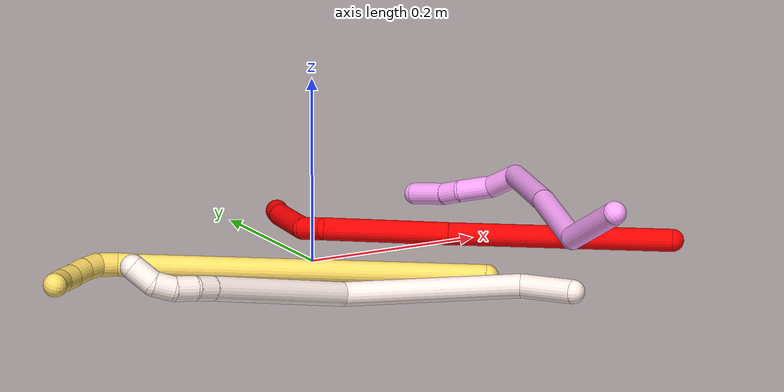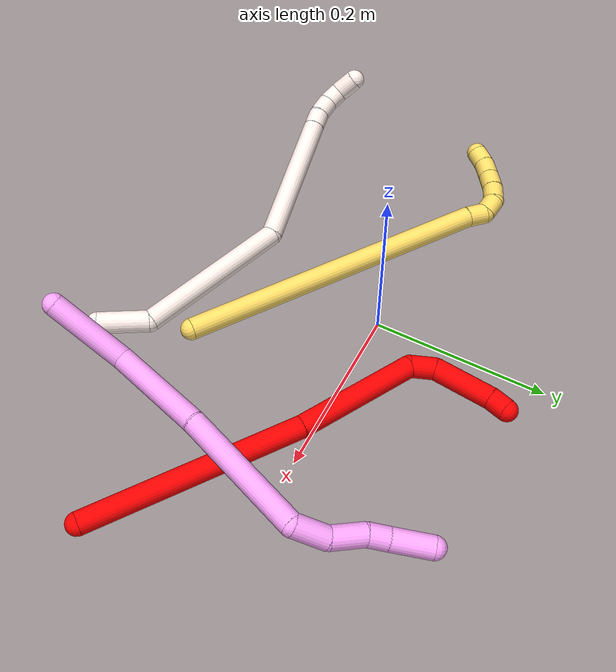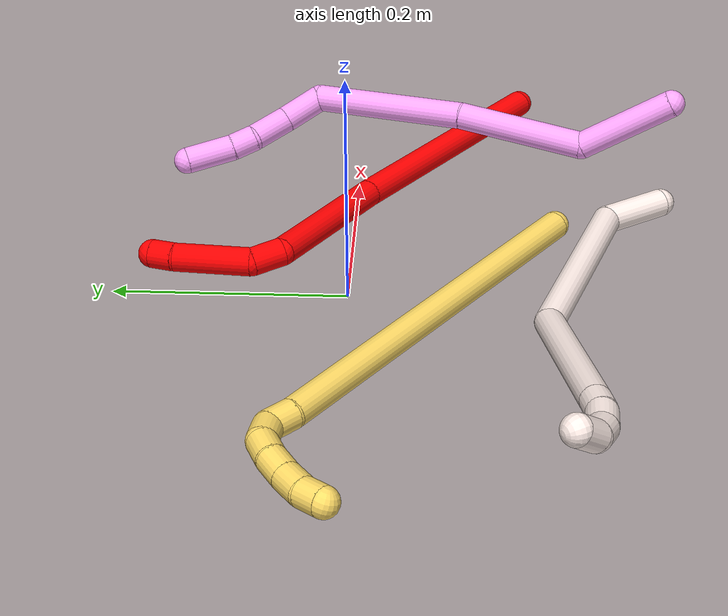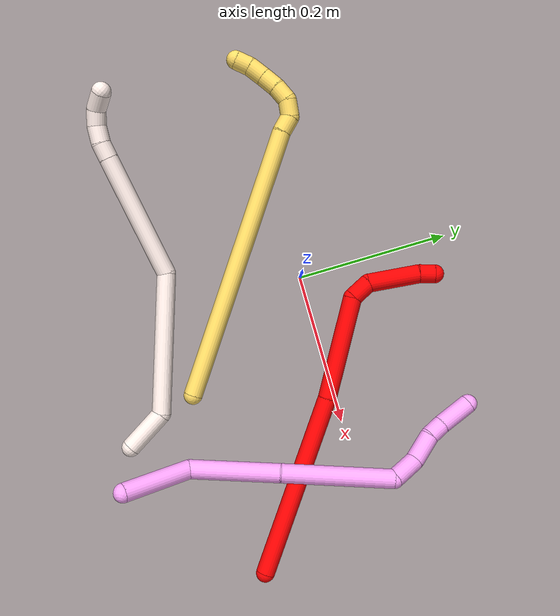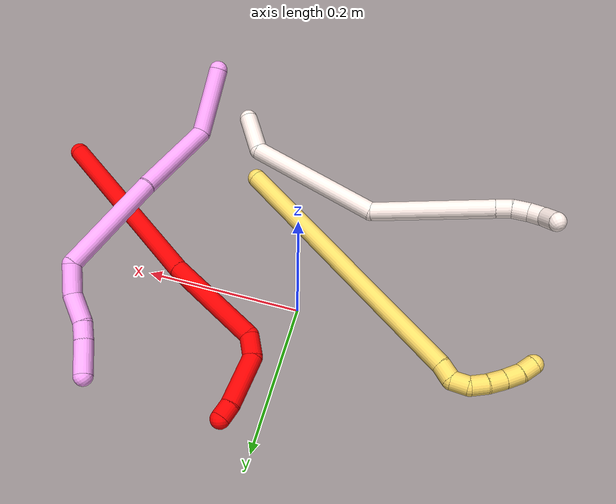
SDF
<sdf version="1.7">
 <world name="default">
  <model name="2">
   <static>0</static>
   <link name="2">
    <collision name="collision-cylinder-e_1_1_4">
     <pose>-0.086972 0.040466 -0.076213 -2.65348 -0.789337 2.06392</pose>
     <geometry><cylinder><radius>0.0125</radius><length>0.24503</length></cylinder></geometry>
     <surface>
      <friction><ode><mu>1.16</mu><mu2>1.16</mu2><slip1>0</slip1><slip2>0</slip2></ode></friction>
      <contact><ode><kp>1e+06</kp><kd>1</kd><max_vel>0</max_vel><min_depth>0.001</min_depth></ode></contact>
     </surface>
    </collision>
    <visual name="visual-cylinder-e_1_1_4">
     <pose>-0.086972 0.040466 -0.076213 -2.65348 -0.789337 2.06392</pose>
     <geometry><cylinder><radius>0.0125</radius><length>0.24503</length></cylinder></geometry>
     <material><ambient>1 0 0 1</ambient></material>
    </visual>
    <collision name="collision-cylinder-e_2_4_5">
     <pose>-0.227381 0.100916 -0.190666 -2.66005 -0.891535 2.19227</pose>
     <geometry><cylinder><radius>0.0125</radius><length>0.137364</length></cylinder></geometry>
     <surface>
      <friction><ode><mu>1.16</mu><mu2>1.16</mu2><slip1>0</slip1><slip2>0</slip2></ode></friction>
      <contact><ode><kp>1e+06</kp><kd>1</kd><max_vel>0</max_vel><min_depth>0.001</min_depth></ode></contact>
     </surface>
    </collision>
    <visual name="visual-cylinder-e_2_4_5">
     <pose>-0.227381 0.100916 -0.190666 -2.66005 -0.891535 2.19227</pose>
     <geometry><cylinder><radius>0.0125</radius><length>0.137364</length></cylinder></geometry>
     <material><ambient>1 0 0 1</ambient></material>
    </visual>
    <collision name="collision-cylinder-e_3_5_6">
     <pose>-0.284825 0.12803 -0.240669 -2.59665 -0.283482 0.944322</pose>
     <geometry><cylinder><radius>0.0125</radius><length>0.028653</length></cylinder></geometry>
     <surface>
      <friction><ode><mu>1.16</mu><mu2>1.16</mu2><slip1>0</slip1><slip2>0</slip2></ode></friction>
      <contact><ode><kp>1e+06</kp><kd>1</kd><max_vel>0</max_vel><min_depth>0.001</min_depth></ode></contact>
     </surface>
    </collision>
    <visual name="visual-cylinder-e_3_5_6">
     <pose>-0.284825 0.12803 -0.240669 -2.59665 -0.283482 0.944322</pose>
     <geometry><cylinder><radius>0.0125</radius><length>0.028653</length></cylinder></geometry>
     <material><ambient>1 0 0 1</ambient></material>
    </visual>
    <collision name="collision-cylinder-e_4_6_7">
     <pose>-0.281585 0.159425 -0.27521 -2.3246 0.214396 -0.487345</pose>
     <geometry><cylinder><radius>0.0125</radius><length>0.068124</length></cylinder></geometry>
     <surface>
      <friction><ode><mu>1.16</mu><mu2>1.16</mu2><slip1>0</slip1><slip2>0</slip2></ode></friction>
      <contact><ode><kp>1e+06</kp><kd>1</kd><max_vel>0</max_vel><min_depth>0.001</min_depth></ode></contact>
     </surface>
    </collision>
    <visual name="visual-cylinder-e_4_6_7">
     <pose>-0.281585 0.159425 -0.27521 -2.3246 0.214396 -0.487345</pose>
     <geometry><cylinder><radius>0.0125</radius><length>0.068124</length></cylinder></geometry>
     <material><ambient>1 0 0 1</ambient></material>
    </visual>
    <collision name="collision-cylinder-e_5_7_2">
     <pose>-0.270321 0.191007 -0.304217 -2.27602 0.395975 -0.819334</pose>
     <geometry><cylinder><radius>0.0125</radius><length>0.020829</length></cylinder></geometry>
     <surface>
      <friction><ode><mu>1.16</mu><mu2>1.16</mu2><slip1>0</slip1><slip2>0</slip2></ode></friction>
      <contact><ode><kp>1e+06</kp><kd>1</kd><max_vel>0</max_vel><min_depth>0.001</min_depth></ode></contact>
     </surface>
    </collision>
    <visual name="visual-cylinder-e_5_7_2">
     <pose>-0.270321 0.191007 -0.304217 -2.27602 0.395975 -0.819334</pose>
     <geometry><cylinder><radius>0.0125</radius><length>0.020829</length></cylinder></geometry>
     <material><ambient>1 0 0 1</ambient></material>
    </visual>
    <collision name="collision-sphere-2">
     <pose>-0.266304 0.198324 -0.310445 0 -0 0</pose>
     <geometry><sphere><radius>0.0125</radius></sphere></geometry>
     <surface>
      <friction><ode><mu>1.16</mu><mu2>1.16</mu2><slip1>0</slip1><slip2>0</slip2></ode></friction>
      <contact><ode><kp>1e+06</kp><kd>1</kd><max_vel>0</max_vel><min_depth>0.001</min_depth></ode></contact>
     </surface>
    </collision>
    <visual name="visual-sphere-2">
     <pose>-0.266304 0.198324 -0.310445 0 -0 0</pose>
     <geometry><sphere><radius>0.0125</radius></sphere></geometry>
     <material><ambient>1 0 0 1</ambient></material>
    </visual>
    <collision name="collision-sphere-7">
     <pose>-0.274338 0.183691 -0.297989 0 -0 0</pose>
     <geometry><sphere><radius>0.0125</radius></sphere></geometry>
     <surface>
      <friction><ode><mu>1.16</mu><mu2>1.16</mu2><slip1>0</slip1><slip2>0</slip2></ode></friction>
      <contact><ode><kp>1e+06</kp><kd>1</kd><max_vel>0</max_vel><min_depth>0.001</min_depth></ode></contact>
     </surface>
    </collision>
    <visual name="visual-sphere-7">
     <pose>-0.274338 0.183691 -0.297989 0 -0 0</pose>
     <geometry><sphere><radius>0.0125</radius></sphere></geometry>
     <material><ambient>1 0 0 1</ambient></material>
    </visual>
    <collision name="collision-sphere-6">
     <pose>-0.288832 0.135159 -0.252431 0 -0 0</pose>
     <geometry><sphere><radius>0.0125</radius></sphere></geometry>
     <surface>
      <friction><ode><mu>1.16</mu><mu2>1.16</mu2><slip1>0</slip1><slip2>0</slip2></ode></friction>
      <contact><ode><kp>1e+06</kp><kd>1</kd><max_vel>0</max_vel><min_depth>0.001</min_depth></ode></contact>
     </surface>
    </collision>
    <visual name="visual-sphere-6">
     <pose>-0.288832 0.135159 -0.252431 0 -0 0</pose>
     <geometry><sphere><radius>0.0125</radius></sphere></geometry>
     <material><ambient>1 0 0 1</ambient></material>
    </visual>
    <collision name="collision-sphere-5">
     <pose>-0.280818 0.1209 -0.228907 0 -0 0</pose>
     <geometry><sphere><radius>0.0125</radius></sphere></geometry>
     <surface>
      <friction><ode><mu>1.16</mu><mu2>1.16</mu2><slip1>0</slip1><slip2>0</slip2></ode></friction>
      <contact><ode><kp>1e+06</kp><kd>1</kd><max_vel>0</max_vel><min_depth>0.001</min_depth></ode></contact>
     </surface>
    </collision>
    <visual name="visual-sphere-5">
     <pose>-0.280818 0.1209 -0.228907 0 -0 0</pose>
     <geometry><sphere><radius>0.0125</radius></sphere></geometry>
     <material><ambient>1 0 0 1</ambient></material>
    </visual>
    <collision name="collision-sphere-1">
     <geometry><sphere><radius>0.0125</radius></sphere></geometry>
     <surface>
      <friction><ode><mu>1.16</mu><mu2>1.16</mu2><slip1>0</slip1><slip2>0</slip2></ode></friction>
      <contact><ode><kp>1e+06</kp><kd>1</kd><max_vel>0</max_vel><min_depth>0.001</min_depth></ode></contact>
     </surface>
    </collision>
    <visual name="visual-sphere-1">
     <geometry><sphere><radius>0.0125</radius></sphere></geometry>
     <material><ambient>1 0 0 1</ambient></material>
    </visual>
    <collision name="collision-sphere-4">
     <pose>-0.173943 0.080932 -0.152425 0 -0 0</pose>
     <geometry><sphere><radius>0.0125</radius></sphere></geometry>
     <surface>
      <friction><ode><mu>1.16</mu><mu2>1.16</mu2><slip1>0</slip1><slip2>0</slip2></ode></friction>
      <contact><ode><kp>1e+06</kp><kd>1</kd><max_vel>0</max_vel><min_depth>0.001</min_depth></ode></contact>
     </surface>
    </collision>
    <visual name="visual-sphere-4">
     <pose>-0.173943 0.080932 -0.152425 0 -0 0</pose>
     <geometry><sphere><radius>0.0125</radius></sphere></geometry>
     <material><ambient>1 0 0 1</ambient></material>
    </visual>
    <inertial>
     <pose>-0.171038 0.08457 -0.153692 0 -0 0</pose>
     <mass>0.5</mass>
     <inertia>
      <ixx>0.000382</ixx>
      <ixy>0</ixy>
      <ixz>0</ixz>
      <iyy>0.001924</iyy>
      <iyz>0</iyz>
      <izz>0.000523</izz>
     </inertia>
    </inertial>
   </link>
   <pose>0.362669 -0.153246 0.011499 0.803013 0.267299 0.119262</pose>
  </model>
  <model name="4">
   <static>0</static>
   <link name="4">
    <collision name="collision-cylinder-e_1_1_4">
     <pose>0.016731 0.029963 -0.029834 -2.35405 0.376783 -0.860432</pose>
     <geometry><cylinder><radius>0.0125</radius><length>0.090945</length></cylinder></geometry>
     <surface>
      <friction><ode><mu>1.16</mu><mu2>1.16</mu2><slip1>0</slip1><slip2>0</slip2></ode></friction>
      <contact><ode><kp>1e+06</kp><kd>1</kd><max_vel>0</max_vel><min_depth>0.001</min_depth></ode></contact>
     </surface>
    </collision>
    <visual name="visual-cylinder-e_1_1_4">
     <pose>0.016731 0.029963 -0.029834 -2.35405 0.376783 -0.860432</pose>
     <geometry><cylinder><radius>0.0125</radius><length>0.090945</length></cylinder></geometry>
     <material><ambient>1 0.65098 0.996078 1</ambient></material>
    </visual>
    <collision name="collision-cylinder-e_2_4_5">
     <pose>0.041978 0.117792 -0.067216 -1.70049 0.144914 -0.164955</pose>
     <geometry><cylinder><radius>0.0125</radius><length>0.117951</length></cylinder></geometry>
     <surface>
      <friction><ode><mu>1.16</mu><mu2>1.16</mu2><slip1>0</slip1><slip2>0</slip2></ode></friction>
      <contact><ode><kp>1e+06</kp><kd>1</kd><max_vel>0</max_vel><min_depth>0.001</min_depth></ode></contact>
     </surface>
    </collision>
    <visual name="visual-cylinder-e_2_4_5">
     <pose>0.041978 0.117792 -0.067216 -1.70049 0.144914 -0.164955</pose>
     <geometry><cylinder><radius>0.0125</radius><length>0.117951</length></cylinder></geometry>
     <material><ambient>1 0.65098 0.996078 1</ambient></material>
    </visual>
    <collision name="collision-cylinder-e_3_5_6">
     <pose>0.069928 0.244229 -0.088705 -1.7714 0.270899 -0.330525</pose>
     <geometry><cylinder><radius>0.0125</radius><length>0.14524</length></cylinder></geometry>
     <surface>
      <friction><ode><mu>1.16</mu><mu2>1.16</mu2><slip1>0</slip1><slip2>0</slip2></ode></friction>
      <contact><ode><kp>1e+06</kp><kd>1</kd><max_vel>0</max_vel><min_depth>0.001</min_depth></ode></contact>
     </surface>
    </collision>
    <visual name="visual-cylinder-e_3_5_6">
     <pose>0.069928 0.244229 -0.088705 -1.7714 0.270899 -0.330525</pose>
     <geometry><cylinder><radius>0.0125</radius><length>0.14524</length></cylinder></geometry>
     <material><ambient>1 0.65098 0.996078 1</ambient></material>
    </visual>
    <collision name="collision-cylinder-e_4_6_7">
     <pose>0.092234 0.32343 -0.118816 -2.55987 0.14741 -0.483674</pose>
     <geometry><cylinder><radius>0.0125</radius><length>0.039127</length></cylinder></geometry>
     <surface>
      <friction><ode><mu>1.16</mu><mu2>1.16</mu2><slip1>0</slip1><slip2>0</slip2></ode></friction>
      <contact><ode><kp>1e+06</kp><kd>1</kd><max_vel>0</max_vel><min_depth>0.001</min_depth></ode></contact>
     </surface>
    </collision>
    <visual name="visual-cylinder-e_4_6_7">
     <pose>0.092234 0.32343 -0.118816 -2.55987 0.14741 -0.483674</pose>
     <geometry><cylinder><radius>0.0125</radius><length>0.039127</length></cylinder></geometry>
     <material><ambient>1 0.65098 0.996078 1</ambient></material>
    </visual>
    <collision name="collision-cylinder-e_5_7_8">
     <pose>0.09007 0.342444 -0.151599 -2.67441 -0.264346 1.01909</pose>
     <geometry><cylinder><radius>0.0125</radius><length>0.038558</length></cylinder></geometry>
     <surface>
      <friction><ode><mu>1.16</mu><mu2>1.16</mu2><slip1>0</slip1><slip2>0</slip2></ode></friction>
      <contact><ode><kp>1e+06</kp><kd>1</kd><max_vel>0</max_vel><min_depth>0.001</min_depth></ode></contact>
     </surface>
    </collision>
    <visual name="visual-cylinder-e_5_7_8">
     <pose>0.09007 0.342444 -0.151599 -2.67441 -0.264346 1.01909</pose>
     <geometry><cylinder><radius>0.0125</radius><length>0.038558</length></cylinder></geometry>
     <material><ambient>1 0.65098 0.996078 1</ambient></material>
    </visual>
    <collision name="collision-cylinder-e_6_8_9">
     <pose>0.084448 0.357917 -0.177375 -2.48284 -0.050456 0.147369</pose>
     <geometry><cylinder><radius>0.0125</radius><length>0.023199</length></cylinder></geometry>
     <surface>
      <friction><ode><mu>1.16</mu><mu2>1.16</mu2><slip1>0</slip1><slip2>0</slip2></ode></friction>
      <contact><ode><kp>1e+06</kp><kd>1</kd><max_vel>0</max_vel><min_depth>0.001</min_depth></ode></contact>
     </surface>
    </collision>
    <visual name="visual-cylinder-e_6_8_9">
     <pose>0.084448 0.357917 -0.177375 -2.48284 -0.050456 0.147369</pose>
     <geometry><cylinder><radius>0.0125</radius><length>0.023199</length></cylinder></geometry>
     <material><ambient>1 0.65098 0.996078 1</ambient></material>
    </visual>
    <collision name="collision-cylinder-e_7_9_2">
     <pose>0.081243 0.380749 -0.202383 -2.35955 -0.116754 0.281656</pose>
     <geometry><cylinder><radius>0.0125</radius><length>0.044979</length></cylinder></geometry>
     <surface>
      <friction><ode><mu>1.16</mu><mu2>1.16</mu2><slip1>0</slip1><slip2>0</slip2></ode></friction>
      <contact><ode><kp>1e+06</kp><kd>1</kd><max_vel>0</max_vel><min_depth>0.001</min_depth></ode></contact>
     </surface>
    </collision>
    <visual name="visual-cylinder-e_7_9_2">
     <pose>0.081243 0.380749 -0.202383 -2.35955 -0.116754 0.281656</pose>
     <geometry><cylinder><radius>0.0125</radius><length>0.044979</length></cylinder></geometry>
     <material><ambient>1 0.65098 0.996078 1</ambient></material>
    </visual>
    <collision name="collision-sphere-2">
     <pose>0.078623 0.39649 -0.21823 0 -0 0</pose>
     <geometry><sphere><radius>0.0125</radius></sphere></geometry>
     <surface>
      <friction><ode><mu>1.16</mu><mu2>1.16</mu2><slip1>0</slip1><slip2>0</slip2></ode></friction>
      <contact><ode><kp>1e+06</kp><kd>1</kd><max_vel>0</max_vel><min_depth>0.001</min_depth></ode></contact>
     </surface>
    </collision>
    <visual name="visual-sphere-2">
     <pose>0.078623 0.39649 -0.21823 0 -0 0</pose>
     <geometry><sphere><radius>0.0125</radius></sphere></geometry>
     <material><ambient>1 0.65098 0.996078 1</ambient></material>
    </visual>
    <collision name="collision-sphere-9">
     <pose>0.083863 0.365008 -0.186536 0 -0 0</pose>
     <geometry><sphere><radius>0.0125</radius></sphere></geometry>
     <surface>
      <friction><ode><mu>1.16</mu><mu2>1.16</mu2><slip1>0</slip1><slip2>0</slip2></ode></friction>
      <contact><ode><kp>1e+06</kp><kd>1</kd><max_vel>0</max_vel><min_depth>0.001</min_depth></ode></contact>
     </surface>
    </collision>
    <visual name="visual-sphere-9">
     <pose>0.083863 0.365008 -0.186536 0 -0 0</pose>
     <geometry><sphere><radius>0.0125</radius></sphere></geometry>
     <material><ambient>1 0.65098 0.996078 1</ambient></material>
    </visual>
    <collision name="collision-sphere-4">
     <pose>0.033462 0.059925 -0.059668 0 -0 0</pose>
     <geometry><sphere><radius>0.0125</radius></sphere></geometry>
     <surface>
      <friction><ode><mu>1.16</mu><mu2>1.16</mu2><slip1>0</slip1><slip2>0</slip2></ode></friction>
      <contact><ode><kp>1e+06</kp><kd>1</kd><max_vel>0</max_vel><min_depth>0.001</min_depth></ode></contact>
     </surface>
    </collision>
    <visual name="visual-sphere-4">
     <pose>0.033462 0.059925 -0.059668 0 -0 0</pose>
     <geometry><sphere><radius>0.0125</radius></sphere></geometry>
     <material><ambient>1 0.65098 0.996078 1</ambient></material>
    </visual>
    <collision name="collision-sphere-1">
     <geometry><sphere><radius>0.0125</radius></sphere></geometry>
     <surface>
      <friction><ode><mu>1.16</mu><mu2>1.16</mu2><slip1>0</slip1><slip2>0</slip2></ode></friction>
      <contact><ode><kp>1e+06</kp><kd>1</kd><max_vel>0</max_vel><min_depth>0.001</min_depth></ode></contact>
     </surface>
    </collision>
    <visual name="visual-sphere-1">
     <geometry><sphere><radius>0.0125</radius></sphere></geometry>
     <material><ambient>1 0.65098 0.996078 1</ambient></material>
    </visual>
    <collision name="collision-sphere-8">
     <pose>0.085033 0.350825 -0.168215 0 -0 0</pose>
     <geometry><sphere><radius>0.0125</radius></sphere></geometry>
     <surface>
      <friction><ode><mu>1.16</mu><mu2>1.16</mu2><slip1>0</slip1><slip2>0</slip2></ode></friction>
      <contact><ode><kp>1e+06</kp><kd>1</kd><max_vel>0</max_vel><min_depth>0.001</min_depth></ode></contact>
     </surface>
    </collision>
    <visual name="visual-sphere-8">
     <pose>0.085033 0.350825 -0.168215 0 -0 0</pose>
     <geometry><sphere><radius>0.0125</radius></sphere></geometry>
     <material><ambient>1 0.65098 0.996078 1</ambient></material>
    </visual>
    <collision name="collision-sphere-5">
     <pose>0.050495 0.17566 -0.074763 0 -0 0</pose>
     <geometry><sphere><radius>0.0125</radius></sphere></geometry>
     <surface>
      <friction><ode><mu>1.16</mu><mu2>1.16</mu2><slip1>0</slip1><slip2>0</slip2></ode></friction>
      <contact><ode><kp>1e+06</kp><kd>1</kd><max_vel>0</max_vel><min_depth>0.001</min_depth></ode></contact>
     </surface>
    </collision>
    <visual name="visual-sphere-5">
     <pose>0.050495 0.17566 -0.074763 0 -0 0</pose>
     <geometry><sphere><radius>0.0125</radius></sphere></geometry>
     <material><ambient>1 0.65098 0.996078 1</ambient></material>
    </visual>
    <collision name="collision-sphere-6">
     <pose>0.089361 0.312797 -0.102647 0 -0 0</pose>
     <geometry><sphere><radius>0.0125</radius></sphere></geometry>
     <surface>
      <friction><ode><mu>1.16</mu><mu2>1.16</mu2><slip1>0</slip1><slip2>0</slip2></ode></friction>
      <contact><ode><kp>1e+06</kp><kd>1</kd><max_vel>0</max_vel><min_depth>0.001</min_depth></ode></contact>
     </surface>
    </collision>
    <visual name="visual-sphere-6">
     <pose>0.089361 0.312797 -0.102647 0 -0 0</pose>
     <geometry><sphere><radius>0.0125</radius></sphere></geometry>
     <material><ambient>1 0.65098 0.996078 1</ambient></material>
    </visual>
    <collision name="collision-sphere-7">
     <pose>0.095107 0.334063 -0.134984 0 -0 0</pose>
     <geometry><sphere><radius>0.0125</radius></sphere></geometry>
     <surface>
      <friction><ode><mu>1.16</mu><mu2>1.16</mu2><slip1>0</slip1><slip2>0</slip2></ode></friction>
      <contact><ode><kp>1e+06</kp><kd>1</kd><max_vel>0</max_vel><min_depth>0.001</min_depth></ode></contact>
     </surface>
    </collision>
    <visual name="visual-sphere-7">
     <pose>0.095107 0.334063 -0.134984 0 -0 0</pose>
     <geometry><sphere><radius>0.0125</radius></sphere></geometry>
     <material><ambient>1 0.65098 0.996078 1</ambient></material>
    </visual>
    <inertial>
     <pose>0.058649 0.206757 -0.094474 0 -0 0</pose>
     <mass>0.5</mass>
     <inertia>
      <ixx>0.000296</ixx>
      <ixy>0</ixy>
      <ixz>0</ixz>
      <iyy>-0.000189</iyy>
      <iyz>0</iyz>
      <izz>-0.000573</izz>
     </inertia>
    </inertial>
   </link>
   <pose>0.196568 -0.285163 0.092227 0.42751 0.816974 0.005449</pose>
  </model>
  <model name="5">
   <static>0</static>
   <link name="5">
    <collision name="collision-cylinder-e_1_1_4">
     <pose>-0.145004 0.095573 -0.059556 -2.12806 -0.910486 1.44541</pose>
     <geometry><cylinder><radius>0.0125</radius><length>0.36719</length></cylinder></geometry>
     <surface>
      <friction><ode><mu>1.16</mu><mu2>1.16</mu2><slip1>0</slip1><slip2>0</slip2></ode></friction>
      <contact><ode><kp>1e+06</kp><kd>1</kd><max_vel>0</max_vel><min_depth>0.001</min_depth></ode></contact>
     </surface>
    </collision>
    <visual name="visual-cylinder-e_1_1_4">
     <pose>-0.145004 0.095573 -0.059556 -2.12806 -0.910486 1.44541</pose>
     <geometry><cylinder><radius>0.0125</radius><length>0.36719</length></cylinder></geometry>
     <material><ambient>1 0.858824 0.4 1</ambient></material>
    </visual>
    <collision name="collision-cylinder-e_2_4_5">
     <pose>-0.297612 0.198711 -0.123231 -2.06939 -0.723211 1.1338</pose>
     <geometry><cylinder><radius>0.0125</radius><length>0.02298</length></cylinder></geometry>
     <surface>
      <friction><ode><mu>1.16</mu><mu2>1.16</mu2><slip1>0</slip1><slip2>0</slip2></ode></friction>
      <contact><ode><kp>1e+06</kp><kd>1</kd><max_vel>0</max_vel><min_depth>0.001</min_depth></ode></contact>
     </surface>
    </collision>
    <visual name="visual-cylinder-e_2_4_5">
     <pose>-0.297612 0.198711 -0.123231 -2.06939 -0.723211 1.1338</pose>
     <geometry><cylinder><radius>0.0125</radius><length>0.02298</length></cylinder></geometry>
     <material><ambient>1 0.858824 0.4 1</ambient></material>
    </visual>
    <collision name="collision-cylinder-e_3_5_6">
     <pose>-0.316248 0.207452 -0.128943 -2.50551 -1.39329 2.39176</pose>
     <geometry><cylinder><radius>0.0125</radius><length>0.022417</length></cylinder></geometry>
     <surface>
      <friction><ode><mu>1.16</mu><mu2>1.16</mu2><slip1>0</slip1><slip2>0</slip2></ode></friction>
      <contact><ode><kp>1e+06</kp><kd>1</kd><max_vel>0</max_vel><min_depth>0.001</min_depth></ode></contact>
     </surface>
    </collision>
    <visual name="visual-cylinder-e_3_5_6">
     <pose>-0.316248 0.207452 -0.128943 -2.50551 -1.39329 2.39176</pose>
     <geometry><cylinder><radius>0.0125</radius><length>0.022417</length></cylinder></geometry>
     <material><ambient>1 0.858824 0.4 1</ambient></material>
    </visual>
    <collision name="collision-cylinder-e_4_6_7">
     <pose>-0.337167 0.203975 -0.13145 1.76512 -1.12358 -1.30657</pose>
     <geometry><cylinder><radius>0.0125</radius><length>0.021929</length></cylinder></geometry>
     <surface>
      <friction><ode><mu>1.16</mu><mu2>1.16</mu2><slip1>0</slip1><slip2>0</slip2></ode></friction>
      <contact><ode><kp>1e+06</kp><kd>1</kd><max_vel>0</max_vel><min_depth>0.001</min_depth></ode></contact>
     </surface>
    </collision>
    <visual name="visual-cylinder-e_4_6_7">
     <pose>-0.337167 0.203975 -0.13145 1.76512 -1.12358 -1.30657</pose>
     <geometry><cylinder><radius>0.0125</radius><length>0.021929</length></cylinder></geometry>
     <material><ambient>1 0.858824 0.4 1</ambient></material>
    </visual>
    <collision name="collision-cylinder-e_5_7_8">
     <pose>-0.356307 0.192773 -0.133139 1.68823 -0.951597 -1.05064</pose>
     <geometry><cylinder><radius>0.0125</radius><length>0.022728</length></cylinder></geometry>
     <surface>
      <friction><ode><mu>1.16</mu><mu2>1.16</mu2><slip1>0</slip1><slip2>0</slip2></ode></friction>
      <contact><ode><kp>1e+06</kp><kd>1</kd><max_vel>0</max_vel><min_depth>0.001</min_depth></ode></contact>
     </surface>
    </collision>
    <visual name="visual-cylinder-e_5_7_8">
     <pose>-0.356307 0.192773 -0.133139 1.68823 -0.951597 -1.05064</pose>
     <geometry><cylinder><radius>0.0125</radius><length>0.022728</length></cylinder></geometry>
     <material><ambient>1 0.858824 0.4 1</ambient></material>
    </visual>
    <collision name="collision-cylinder-e_6_8_9">
     <pose>-0.374603 0.179546 -0.133512 1.51108 -0.93386 -0.886685</pose>
     <geometry><cylinder><radius>0.0125</radius><length>0.022494</length></cylinder></geometry>
     <surface>
      <friction><ode><mu>1.16</mu><mu2>1.16</mu2><slip1>0</slip1><slip2>0</slip2></ode></friction>
      <contact><ode><kp>1e+06</kp><kd>1</kd><max_vel>0</max_vel><min_depth>0.001</min_depth></ode></contact>
     </surface>
    </collision>
    <visual name="visual-cylinder-e_6_8_9">
     <pose>-0.374603 0.179546 -0.133512 1.51108 -0.93386 -0.886685</pose>
     <geometry><cylinder><radius>0.0125</radius><length>0.022494</length></cylinder></geometry>
     <material><ambient>1 0.858824 0.4 1</ambient></material>
    </visual>
    <collision name="collision-cylinder-e_7_9_2">
     <pose>-0.390361 0.165477 -0.131414 1.34485 -0.724738 -0.586305</pose>
     <geometry><cylinder><radius>0.0125</radius><length>0.020261</length></cylinder></geometry>
     <surface>
      <friction><ode><mu>1.16</mu><mu2>1.16</mu2><slip1>0</slip1><slip2>0</slip2></ode></friction>
      <contact><ode><kp>1e+06</kp><kd>1</kd><max_vel>0</max_vel><min_depth>0.001</min_depth></ode></contact>
     </surface>
    </collision>
    <visual name="visual-cylinder-e_7_9_2">
     <pose>-0.390361 0.165477 -0.131414 1.34485 -0.724738 -0.586305</pose>
     <geometry><cylinder><radius>0.0125</radius><length>0.020261</length></cylinder></geometry>
     <material><ambient>1 0.858824 0.4 1</ambient></material>
    </visual>
    <collision name="collision-sphere-2">
     <pose>-0.397077 0.158085 -0.129715 0 -0 0</pose>
     <geometry><sphere><radius>0.0125</radius></sphere></geometry>
     <surface>
      <friction><ode><mu>1.16</mu><mu2>1.16</mu2><slip1>0</slip1><slip2>0</slip2></ode></friction>
      <contact><ode><kp>1e+06</kp><kd>1</kd><max_vel>0</max_vel><min_depth>0.001</min_depth></ode></contact>
     </surface>
    </collision>
    <visual name="visual-sphere-2">
     <pose>-0.397077 0.158085 -0.129715 0 -0 0</pose>
     <geometry><sphere><radius>0.0125</radius></sphere></geometry>
     <material><ambient>1 0.858824 0.4 1</ambient></material>
    </visual>
    <collision name="collision-sphere-9">
     <pose>-0.383645 0.172869 -0.133113 0 -0 0</pose>
     <geometry><sphere><radius>0.0125</radius></sphere></geometry>
     <surface>
      <friction><ode><mu>1.16</mu><mu2>1.16</mu2><slip1>0</slip1><slip2>0</slip2></ode></friction>
      <contact><ode><kp>1e+06</kp><kd>1</kd><max_vel>0</max_vel><min_depth>0.001</min_depth></ode></contact>
     </surface>
    </collision>
    <visual name="visual-sphere-9">
     <pose>-0.383645 0.172869 -0.133113 0 -0 0</pose>
     <geometry><sphere><radius>0.0125</radius></sphere></geometry>
     <material><ambient>1 0.858824 0.4 1</ambient></material>
    </visual>
    <collision name="collision-sphere-4">
     <pose>-0.290008 0.191146 -0.119112 0 -0 0</pose>
     <geometry><sphere><radius>0.0125</radius></sphere></geometry>
     <surface>
      <friction><ode><mu>1.16</mu><mu2>1.16</mu2><slip1>0</slip1><slip2>0</slip2></ode></friction>
      <contact><ode><kp>1e+06</kp><kd>1</kd><max_vel>0</max_vel><min_depth>0.001</min_depth></ode></contact>
     </surface>
    </collision>
    <visual name="visual-sphere-4">
     <pose>-0.290008 0.191146 -0.119112 0 -0 0</pose>
     <geometry><sphere><radius>0.0125</radius></sphere></geometry>
     <material><ambient>1 0.858824 0.4 1</ambient></material>
    </visual>
    <collision name="collision-sphere-1">
     <geometry><sphere><radius>0.0125</radius></sphere></geometry>
     <surface>
      <friction><ode><mu>1.16</mu><mu2>1.16</mu2><slip1>0</slip1><slip2>0</slip2></ode></friction>
      <contact><ode><kp>1e+06</kp><kd>1</kd><max_vel>0</max_vel><min_depth>0.001</min_depth></ode></contact>
     </surface>
    </collision>
    <visual name="visual-sphere-1">
     <geometry><sphere><radius>0.0125</radius></sphere></geometry>
     <material><ambient>1 0.858824 0.4 1</ambient></material>
    </visual>
    <collision name="collision-sphere-8">
     <pose>-0.365561 0.186223 -0.133911 0 -0 0</pose>
     <geometry><sphere><radius>0.0125</radius></sphere></geometry>
     <surface>
      <friction><ode><mu>1.16</mu><mu2>1.16</mu2><slip1>0</slip1><slip2>0</slip2></ode></friction>
      <contact><ode><kp>1e+06</kp><kd>1</kd><max_vel>0</max_vel><min_depth>0.001</min_depth></ode></contact>
     </surface>
    </collision>
    <visual name="visual-sphere-8">
     <pose>-0.365561 0.186223 -0.133911 0 -0 0</pose>
     <geometry><sphere><radius>0.0125</radius></sphere></geometry>
     <material><ambient>1 0.858824 0.4 1</ambient></material>
    </visual>
    <collision name="collision-sphere-5">
     <pose>-0.305216 0.206276 -0.12735 0 -0 0</pose>
     <geometry><sphere><radius>0.0125</radius></sphere></geometry>
     <surface>
      <friction><ode><mu>1.16</mu><mu2>1.16</mu2><slip1>0</slip1><slip2>0</slip2></ode></friction>
      <contact><ode><kp>1e+06</kp><kd>1</kd><max_vel>0</max_vel><min_depth>0.001</min_depth></ode></contact>
     </surface>
    </collision>
    <visual name="visual-sphere-5">
     <pose>-0.305216 0.206276 -0.12735 0 -0 0</pose>
     <geometry><sphere><radius>0.0125</radius></sphere></geometry>
     <material><ambient>1 0.858824 0.4 1</ambient></material>
    </visual>
    <collision name="collision-sphere-6">
     <pose>-0.327281 0.208628 -0.130535 0 -0 0</pose>
     <geometry><sphere><radius>0.0125</radius></sphere></geometry>
     <surface>
      <friction><ode><mu>1.16</mu><mu2>1.16</mu2><slip1>0</slip1><slip2>0</slip2></ode></friction>
      <contact><ode><kp>1e+06</kp><kd>1</kd><max_vel>0</max_vel><min_depth>0.001</min_depth></ode></contact>
     </surface>
    </collision>
    <visual name="visual-sphere-6">
     <pose>-0.327281 0.208628 -0.130535 0 -0 0</pose>
     <geometry><sphere><radius>0.0125</radius></sphere></geometry>
     <material><ambient>1 0.858824 0.4 1</ambient></material>
    </visual>
    <collision name="collision-sphere-7">
     <pose>-0.347053 0.199323 -0.132366 0 -0 0</pose>
     <geometry><sphere><radius>0.0125</radius></sphere></geometry>
     <surface>
      <friction><ode><mu>1.16</mu><mu2>1.16</mu2><slip1>0</slip1><slip2>0</slip2></ode></friction>
      <contact><ode><kp>1e+06</kp><kd>1</kd><max_vel>0</max_vel><min_depth>0.001</min_depth></ode></contact>
     </surface>
    </collision>
    <visual name="visual-sphere-7">
     <pose>-0.347053 0.199323 -0.132366 0 -0 0</pose>
     <geometry><sphere><radius>0.0125</radius></sphere></geometry>
     <material><ambient>1 0.858824 0.4 1</ambient></material>
    </visual>
    <inertial>
     <pose>-0.198 0.121112 -0.07833 0 -0 0</pose>
     <mass>0.5</mass>
     <inertia>
      <ixx>0.002807</ixx>
      <ixy>0</ixy>
      <ixz>0</ixz>
      <iyy>0.005017</iyy>
      <iyz>0</iyz>
      <izz>0.001116</izz>
     </inertia>
    </inertial>
   </link>
   <pose>0.110146 -0.179346 0.011499 0.301068 0.198428 0.026783</pose>
  </model>
  <model name="11">
   <static>0</static>
   <link name="11">
    <collision name="collision-cylinder-e_1_1_4">
     <pose>0.000323 -0.000518 -0.029483 3.12402 0.010954 1.11479</pose>
     <geometry><cylinder><radius>0.0125</radius><length>0.058978</length></cylinder></geometry>
     <surface>
      <friction><ode><mu>1.16</mu><mu2>1.16</mu2><slip1>0</slip1><slip2>0</slip2></ode></friction>
      <contact><ode><kp>1e+06</kp><kd>1</kd><max_vel>0</max_vel><min_depth>0.001</min_depth></ode></contact>
     </surface>
    </collision>
    <visual name="visual-cylinder-e_1_1_4">
     <pose>0.000323 -0.000518 -0.029483 3.12402 0.010954 1.11479</pose>
     <geometry><cylinder><radius>0.0125</radius><length>0.058978</length></cylinder></geometry>
     <material><ambient>1 0.933333 0.909804 1</ambient></material>
    </visual>
    <collision name="collision-cylinder-e_2_4_5">
     <pose>-0.056455 0.014204 -0.130967 -2.93301 -0.659845 2.54829</pose>
     <geometry><cylinder><radius>0.0125</radius><length>0.1863</length></cylinder></geometry>
     <surface>
      <friction><ode><mu>1.16</mu><mu2>1.16</mu2><slip1>0</slip1><slip2>0</slip2></ode></friction>
      <contact><ode><kp>1e+06</kp><kd>1</kd><max_vel>0</max_vel><min_depth>0.001</min_depth></ode></contact>
     </surface>
    </collision>
    <visual name="visual-cylinder-e_2_4_5">
     <pose>-0.056455 0.014204 -0.130967 -2.93301 -0.659845 2.54829</pose>
     <geometry><cylinder><radius>0.0125</radius><length>0.1863</length></cylinder></geometry>
     <material><ambient>1 0.933333 0.909804 1</ambient></material>
    </visual>
    <collision name="collision-cylinder-e_3_5_6">
     <pose>-0.181659 0.063848 -0.234357 -2.3104 -0.971008 1.74851</pose>
     <geometry><cylinder><radius>0.0125</radius><length>0.165011</length></cylinder></geometry>
     <surface>
      <friction><ode><mu>1.16</mu><mu2>1.16</mu2><slip1>0</slip1><slip2>0</slip2></ode></friction>
      <contact><ode><kp>1e+06</kp><kd>1</kd><max_vel>0</max_vel><min_depth>0.001</min_depth></ode></contact>
     </surface>
    </collision>
    <visual name="visual-cylinder-e_3_5_6">
     <pose>-0.181659 0.063848 -0.234357 -2.3104 -0.971008 1.74851</pose>
     <geometry><cylinder><radius>0.0125</radius><length>0.165011</length></cylinder></geometry>
     <material><ambient>1 0.933333 0.909804 1</ambient></material>
    </visual>
    <collision name="collision-cylinder-e_4_6_7">
     <pose>-0.258406 0.102322 -0.269782 -2.35211 -0.985216 1.8215</pose>
     <geometry><cylinder><radius>0.0125</radius><length>0.020739</length></cylinder></geometry>
     <surface>
      <friction><ode><mu>1.16</mu><mu2>1.16</mu2><slip1>0</slip1><slip2>0</slip2></ode></friction>
      <contact><ode><kp>1e+06</kp><kd>1</kd><max_vel>0</max_vel><min_depth>0.001</min_depth></ode></contact>
     </surface>
    </collision>
    <visual name="visual-cylinder-e_4_6_7">
     <pose>-0.258406 0.102322 -0.269782 -2.35211 -0.985216 1.8215</pose>
     <geometry><cylinder><radius>0.0125</radius><length>0.020739</length></cylinder></geometry>
     <material><ambient>1 0.933333 0.909804 1</ambient></material>
    </visual>
    <collision name="collision-cylinder-e_5_7_8">
     <pose>-0.275677 0.109684 -0.280298 -2.6714 -0.870728 2.1905</pose>
     <geometry><cylinder><radius>0.0125</radius><length>0.022567</length></cylinder></geometry>
     <surface>
      <friction><ode><mu>1.16</mu><mu2>1.16</mu2><slip1>0</slip1><slip2>0</slip2></ode></friction>
      <contact><ode><kp>1e+06</kp><kd>1</kd><max_vel>0</max_vel><min_depth>0.001</min_depth></ode></contact>
     </surface>
    </collision>
    <visual name="visual-cylinder-e_5_7_8">
     <pose>-0.275677 0.109684 -0.280298 -2.6714 -0.870728 2.1905</pose>
     <geometry><cylinder><radius>0.0125</radius><length>0.022567</length></cylinder></geometry>
     <material><ambient>1 0.933333 0.909804 1</ambient></material>
    </visual>
    <collision name="collision-cylinder-e_6_8_9">
     <pose>-0.289628 0.117499 -0.294392 -2.60574 -0.54117 1.58116</pose>
     <geometry><cylinder><radius>0.0125</radius><length>0.020662</length></cylinder></geometry>
     <surface>
      <friction><ode><mu>1.16</mu><mu2>1.16</mu2><slip1>0</slip1><slip2>0</slip2></ode></friction>
      <contact><ode><kp>1e+06</kp><kd>1</kd><max_vel>0</max_vel><min_depth>0.001</min_depth></ode></contact>
     </surface>
    </collision>
    <visual name="visual-cylinder-e_6_8_9">
     <pose>-0.289628 0.117499 -0.294392 -2.60574 -0.54117 1.58116</pose>
     <geometry><cylinder><radius>0.0125</radius><length>0.020662</length></cylinder></geometry>
     <material><ambient>1 0.933333 0.909804 1</ambient></material>
    </visual>
    <collision name="collision-cylinder-e_7_9_2">
     <pose>-0.295476 0.130128 -0.311989 -2.45947 -0.040845 0.11497</pose>
     <geometry><cylinder><radius>0.0125</radius><length>0.025744</length></cylinder></geometry>
     <surface>
      <friction><ode><mu>1.16</mu><mu2>1.16</mu2><slip1>0</slip1><slip2>0</slip2></ode></friction>
      <contact><ode><kp>1e+06</kp><kd>1</kd><max_vel>0</max_vel><min_depth>0.001</min_depth></ode></contact>
     </surface>
    </collision>
    <visual name="visual-cylinder-e_7_9_2">
     <pose>-0.295476 0.130128 -0.311989 -2.45947 -0.040845 0.11497</pose>
     <geometry><cylinder><radius>0.0125</radius><length>0.025744</length></cylinder></geometry>
     <material><ambient>1 0.933333 0.909804 1</ambient></material>
    </visual>
    <collision name="collision-sphere-2">
     <pose>-0.296001 0.138236 -0.321973 0 -0 0</pose>
     <geometry><sphere><radius>0.0125</radius></sphere></geometry>
     <surface>
      <friction><ode><mu>1.16</mu><mu2>1.16</mu2><slip1>0</slip1><slip2>0</slip2></ode></friction>
      <contact><ode><kp>1e+06</kp><kd>1</kd><max_vel>0</max_vel><min_depth>0.001</min_depth></ode></contact>
     </surface>
    </collision>
    <visual name="visual-sphere-2">
     <pose>-0.296001 0.138236 -0.321973 0 -0 0</pose>
     <geometry><sphere><radius>0.0125</radius></sphere></geometry>
     <material><ambient>1 0.933333 0.909804 1</ambient></material>
    </visual>
    <collision name="collision-sphere-9">
     <pose>-0.29495 0.12202 -0.302006 0 -0 0</pose>
     <geometry><sphere><radius>0.0125</radius></sphere></geometry>
     <surface>
      <friction><ode><mu>1.16</mu><mu2>1.16</mu2><slip1>0</slip1><slip2>0</slip2></ode></friction>
      <contact><ode><kp>1e+06</kp><kd>1</kd><max_vel>0</max_vel><min_depth>0.001</min_depth></ode></contact>
     </surface>
    </collision>
    <visual name="visual-sphere-9">
     <pose>-0.29495 0.12202 -0.302006 0 -0 0</pose>
     <geometry><sphere><radius>0.0125</radius></sphere></geometry>
     <material><ambient>1 0.933333 0.909804 1</ambient></material>
    </visual>
    <collision name="collision-sphere-4">
     <pose>0.000646 -0.001036 -0.058965 0 -0 0</pose>
     <geometry><sphere><radius>0.0125</radius></sphere></geometry>
     <surface>
      <friction><ode><mu>1.16</mu><mu2>1.16</mu2><slip1>0</slip1><slip2>0</slip2></ode></friction>
      <contact><ode><kp>1e+06</kp><kd>1</kd><max_vel>0</max_vel><min_depth>0.001</min_depth></ode></contact>
     </surface>
    </collision>
    <visual name="visual-sphere-4">
     <pose>0.000646 -0.001036 -0.058965 0 -0 0</pose>
     <geometry><sphere><radius>0.0125</radius></sphere></geometry>
     <material><ambient>1 0.933333 0.909804 1</ambient></material>
    </visual>
    <collision name="collision-sphere-1">
     <geometry><sphere><radius>0.0125</radius></sphere></geometry>
     <surface>
      <friction><ode><mu>1.16</mu><mu2>1.16</mu2><slip1>0</slip1><slip2>0</slip2></ode></friction>
      <contact><ode><kp>1e+06</kp><kd>1</kd><max_vel>0</max_vel><min_depth>0.001</min_depth></ode></contact>
     </surface>
    </collision>
    <visual name="visual-sphere-1">
     <geometry><sphere><radius>0.0125</radius></sphere></geometry>
     <material><ambient>1 0.933333 0.909804 1</ambient></material>
    </visual>
    <collision name="collision-sphere-8">
     <pose>-0.284306 0.112978 -0.286779 0 -0 0</pose>
     <geometry><sphere><radius>0.0125</radius></sphere></geometry>
     <surface>
      <friction><ode><mu>1.16</mu><mu2>1.16</mu2><slip1>0</slip1><slip2>0</slip2></ode></friction>
      <contact><ode><kp>1e+06</kp><kd>1</kd><max_vel>0</max_vel><min_depth>0.001</min_depth></ode></contact>
     </surface>
    </collision>
    <visual name="visual-sphere-8">
     <pose>-0.284306 0.112978 -0.286779 0 -0 0</pose>
     <geometry><sphere><radius>0.0125</radius></sphere></geometry>
     <material><ambient>1 0.933333 0.909804 1</ambient></material>
    </visual>
    <collision name="collision-sphere-5">
     <pose>-0.113555 0.029444 -0.202968 0 -0 0</pose>
     <geometry><sphere><radius>0.0125</radius></sphere></geometry>
     <surface>
      <friction><ode><mu>1.16</mu><mu2>1.16</mu2><slip1>0</slip1><slip2>0</slip2></ode></friction>
      <contact><ode><kp>1e+06</kp><kd>1</kd><max_vel>0</max_vel><min_depth>0.001</min_depth></ode></contact>
     </surface>
    </collision>
    <visual name="visual-sphere-5">
     <pose>-0.113555 0.029444 -0.202968 0 -0 0</pose>
     <geometry><sphere><radius>0.0125</radius></sphere></geometry>
     <material><ambient>1 0.933333 0.909804 1</ambient></material>
    </visual>
    <collision name="collision-sphere-6">
     <pose>-0.249764 0.098253 -0.265746 0 -0 0</pose>
     <geometry><sphere><radius>0.0125</radius></sphere></geometry>
     <surface>
      <friction><ode><mu>1.16</mu><mu2>1.16</mu2><slip1>0</slip1><slip2>0</slip2></ode></friction>
      <contact><ode><kp>1e+06</kp><kd>1</kd><max_vel>0</max_vel><min_depth>0.001</min_depth></ode></contact>
     </surface>
    </collision>
    <visual name="visual-sphere-6">
     <pose>-0.249764 0.098253 -0.265746 0 -0 0</pose>
     <geometry><sphere><radius>0.0125</radius></sphere></geometry>
     <material><ambient>1 0.933333 0.909804 1</ambient></material>
    </visual>
    <collision name="collision-sphere-7">
     <pose>-0.267047 0.106391 -0.273817 0 -0 0</pose>
     <geometry><sphere><radius>0.0125</radius></sphere></geometry>
     <surface>
      <friction><ode><mu>1.16</mu><mu2>1.16</mu2><slip1>0</slip1><slip2>0</slip2></ode></friction>
      <contact><ode><kp>1e+06</kp><kd>1</kd><max_vel>0</max_vel><min_depth>0.001</min_depth></ode></contact>
     </surface>
    </collision>
    <visual name="visual-sphere-7">
     <pose>-0.267047 0.106391 -0.273817 0 -0 0</pose>
     <geometry><sphere><radius>0.0125</radius></sphere></geometry>
     <material><ambient>1 0.933333 0.909804 1</ambient></material>
    </visual>
    <inertial>
     <pose>-0.131291 0.047053 -0.181688 0 -0 0</pose>
     <mass>0.5</mass>
     <inertia>
      <ixx>6.5e-05</ixx>
      <ixy>0</ixy>
      <ixz>0</ixz>
      <iyy>0.001233</iyy>
      <iyz>0</iyz>
      <izz>0.000376</izz>
     </inertia>
    </inertial>
   </link>
   <pose>0.153206 -0.276962 0.013257 1.55494 -0.23345 0.567828</pose>
  </model>
 </world>
</sdf>
